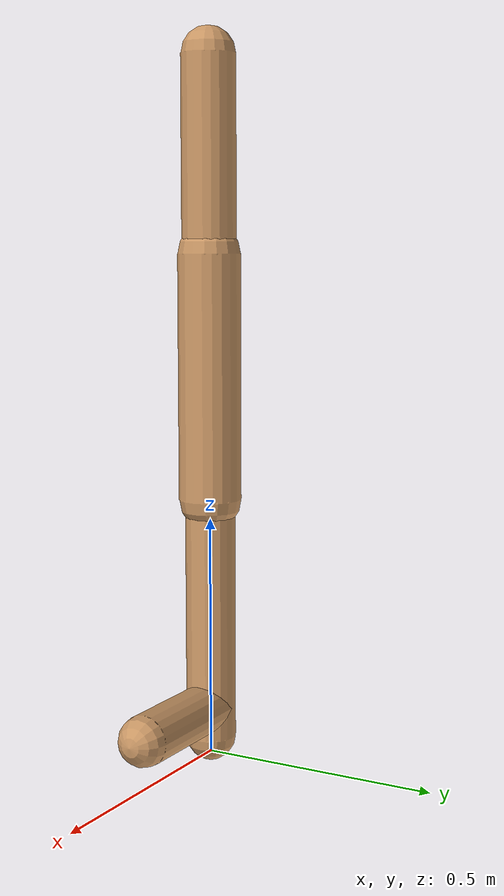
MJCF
<mujoco model="walker2d">
  <compiler angle="degree" coordinate="global" inertiafromgeom="true" />
  <default>
    <joint armature="0.01" damping=".1" limited="true" />
    <geom conaffinity="0" condim="3" contype="1" density="1000" friction="0.8 .1 .1" rgba="0.8 0.6 .4 1" />
  </default>
  <option integrator="RK4" timestep="0.002" />
  <worldbody>

    <body name="torso" pos="0 0 0.12301874774084806">
      <joint armature="0" axis="1 0 0" damping="0" limited="false" name="ignorex" pos="0 0 0" stiffness="0" type="slide" />
      <joint armature="0" axis="0 0 1" damping="0" limited="false" name="ignorez" pos="0 0 0" ref="1.25" stiffness="0" type="slide" />
      <joint armature="0" axis="0 1 0" damping="0" limited="false" name="ignorey" pos="0 0 0" stiffness="0" type="hinge" />
      <geom fromto="0 0 1.45 0 0 1.05" name="torso_geom" size="0.05624864592305731" type="capsule" />
      <body name="thigh">
        <joint axis="0 -1 0" name="thigh_joint" pos="0 0 1.05" range="-150 0" type="hinge" />
        <geom fromto="0.0 0.0 1.05 0.0 0.0 0.5417279615964403" name="thigh_geom" size="0.0649693235401948" type="capsule" />
        <body name="leg" pos="0.0 0.0 -0.058272038403559656">
          <joint axis="0 -1 0" name="leg_joint" pos="0 0 0.6" range="-150 0" type="hinge" />
          <geom fromto="0.0 0.0 0.6 0.0 0.0 0.03525329066271156" name="leg_geom" size="0.05197545883215584" type="capsule" />
          <body name="foot" pos="0.0 0.0 -0.06474670933728845">
            <joint axis="0 -1 0" name="foot_joint" pos="0 0 0.1" range="-45 45" type="hinge" />
            <geom fromto="-0.0 0.0 0.1 0.2565702239728891 0.0 0.1" name="foot_geom" size="0.05165172399772701" type="capsule" />
          </body>
        </body>
      </body>

      <body name="thigh_left">
        <joint axis="0 -1 0" name="thigh_left_joint" pos="0 0 1.05" range="-150 0" type="hinge" />
        <geom fromto="0.0 0.0 1.05 0.0 0.0 0.5417279615964403" name="thigh_left_geom" rgba=".7 .3 .6 1" size="0.0649693235401948" type="capsule" />
        <body name="leg_left" pos="0.0 0.0 -0.058272038403559656">
          <joint axis="0 -1 0" name="leg_left_joint" pos="0 0 0.6" range="-150 0" type="hinge" />
          <geom fromto="0.0 0.0 0.6 0.0 0.0 0.03525329066271156" name="leg_left_geom" rgba=".7 .3 .6 1" size="0.05197545883215584" type="capsule" />
          <body name="foot_left" pos="0.0 0.0 -0.06474670933728845">
            <joint axis="0 -1 0" name="foot_left_joint" pos="0 0 0.1" range="-45 45" type="hinge" />
            <geom fromto="-0.0 0.0 0.1 0.2565702239728891 0.0 0.1" name="foot_left_geom" rgba=".7 .3 .6 1" size="0.05165172399772701" type="capsule" />
          </body>
        </body>
      </body>
    </body>
  </worldbody>
  <actuator>

    <motor ctrllimited="true" ctrlrange="-1.0 1.0" gear="100" joint="thigh_joint" />
    <motor ctrllimited="true" ctrlrange="-1.0 1.0" gear="100" joint="leg_joint" />
    <motor ctrllimited="true" ctrlrange="-1.0 1.0" gear="100" joint="foot_joint" />
    <motor ctrllimited="true" ctrlrange="-1.0 1.0" gear="100" joint="thigh_left_joint" />
    <motor ctrllimited="true" ctrlrange="-1.0 1.0" gear="100" joint="leg_left_joint" />
    <motor ctrllimited="true" ctrlrange="-1.0 1.0" gear="100" joint="foot_left_joint" />

  </actuator>
</mujoco>
